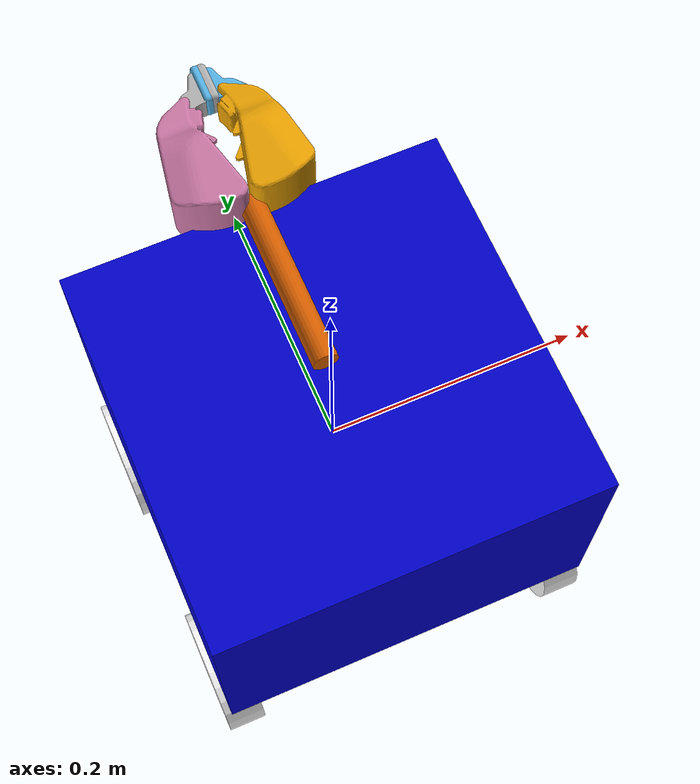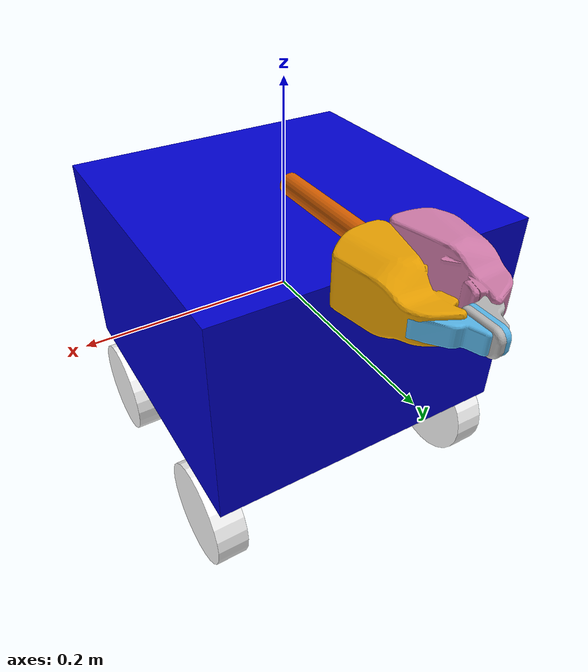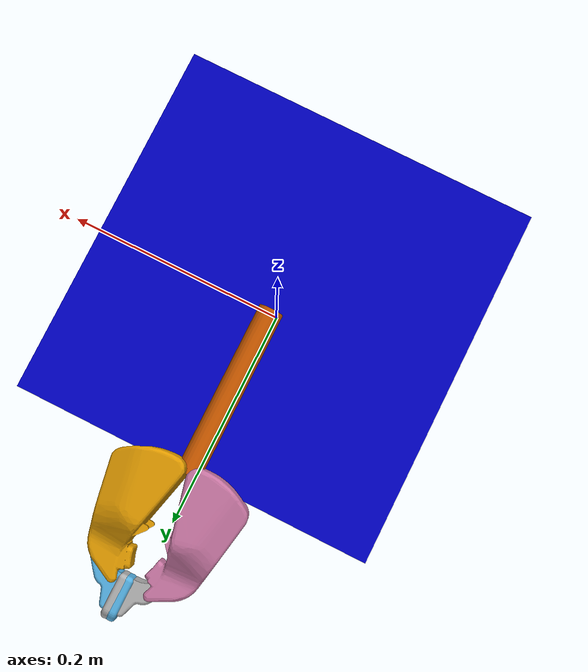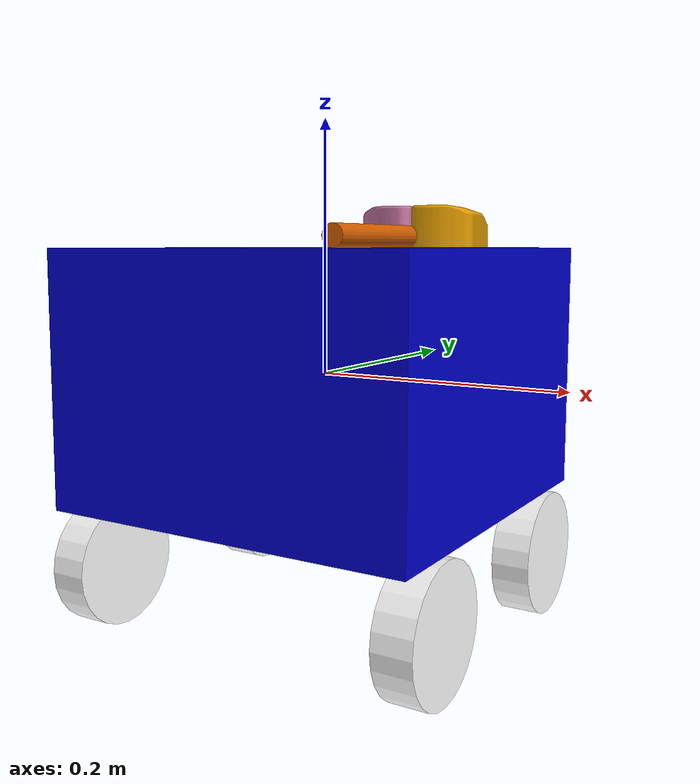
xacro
<?xml version="1.0"?>
<robot xmlns:xacro="http://www.ros.org/wiki/xacro" name="umic_gripper">

 <xacro:property name="width" value="0.30"/>
 <xacro:property name="length" value="0.30"/>
 <xacro:property name="heigth" value="0.20"/>

 <!--materials-->
 <material name="white">
  <color rgba="1.0 1.0 1.0 1.0"/>
 </material>
 <material name="blue">
  <color rgba="0.0 0.0 0.8 1.0"/>
 </material>

 <!--default inertial-->
 <xacro:macro name="default_inertial" params="mass">
   <inertial>
     <mass value="${mass}" />
     <inertia ixx="1.0" ixy="0.0" ixz="0.0" iyy="1.0" iyz="0.0" izz="1.0" />
   </inertial>
 </xacro:macro>

 <link name="base_link">

	<visual>
   <geometry>
    <box size="${width} ${length} ${heigth}"/>
   </geometry>
   <material name="blue"/>
  </visual>

	<xacro:default_inertial mass="10"/>

	<collision>
	 <origin xyz="0 0 0"/>
	 <geometry>
    <box size="${width} ${length} ${heigth}"/>
   </geometry>
	</collision>

 </link>

 <xacro:property name="wheel_width" value="0.03"/>
 <xacro:property name="wheel_radius" value="0.05"/>
 <xacro:macro name="wheel" params="prefix1 prefix2 reflect1 reflect2">

	<link name="${prefix1}_${prefix2}_wheel">

	 <visual>
    <geometry>
     <cylinder length="${wheel_width}" radius="${wheel_radius}"/>
    </geometry>
    <origin rpy="0 1.57075 0"/>
    <material name="white"/>
   </visual>

   <xacro:default_inertial mass="1"/>

	 <collision>
		<origin xyz="0 0 0" rpy="0 1.5707 0"/>
		<geometry>
		 <cylinder radius="${wheel_radius}" length="${wheel_width}"/>
		</geometry>
	 </collision>

	</link>

  <joint name="base_to_${prefix1}_${prefix2}_wheel" type="continuous">
   <parent link="base_link"/>
   <child link="${prefix1}_${prefix2}_wheel"/>
   <axis xyz="1 0 0"/>
   <origin xyz="${reflect2*(width/2-0.01)} ${reflect1*(length/2-wheel_radius)} -${heigth/2+wheel_radius}" />
  </joint>
 </xacro:macro>

 <xacro:wheel prefix1="front" prefix2="right" reflect1="1" reflect2="1" />
 <xacro:wheel prefix1="front" prefix2="left" reflect1="1" reflect2="-1" />
 <xacro:wheel prefix1="rear" prefix2="right" reflect1="-1" reflect2="1" />
 <xacro:wheel prefix1="rear" prefix2="left" reflect1="-1" reflect2="-1" />

 <link name="gripper_pole">

	<visual>
   <geometry>
    <cylinder length="0.14" radius="0.01"/>
   </geometry>
   <origin rpy="1.57075 0 0" xyz="0 0.07 0"/>
  </visual>

	<xacro:default_inertial mass="0.05"/>

	<collision>
	 <geometry>
		<cylinder length="0.14" radius="0.01"/>
	 </geometry>
	 <origin xyz="0 0.07 0" rpy="1.57075 0 0"/>
	</collision>

 </link>

 <joint name="gripper_extension" type="prismatic">
  <parent link="base_link"/>
  <child link="gripper_pole"/>
  <limit effort="1000" lower="0" upper="0.10" velocity="0.5"/>
  <origin xyz="0 0.01 ${heigth/2+0.01}" rpy="0 0 0"/>
 </joint>

 <link name="left_gripper">

  <visual>
   <origin rpy="0 0 1.57075"/>
   <geometry>
    <mesh filename="package://urdf_tutorial/meshes/l_finger.dae"/>
   </geometry>
  </visual>

	<xacro:default_inertial mass="0.05"/>

  <collision>
   <origin rpy="0 0 1.57075"/>
   <geometry>
    <mesh filename="package://urdf_tutorial/meshes/l_finger.dae"/>
   </geometry>
  </collision>

 </link>

 <joint name="left_gripper_joint" type="revolute">
  <axis xyz="0 0 1"/>
  <limit effort="1000.0" lower="0.0" upper="0.548" velocity="0.5"/>
  <origin xyz="-0.01 0.14 0"/>
  <parent link="gripper_pole"/>
  <child link="left_gripper"/>
 </joint>

 <link name="left_tip">

  <visual>
   <origin xyz="0 0 0" rpy="0 0 1.57075"/>
   <geometry>
    <mesh filename="package://urdf_tutorial/meshes/l_finger_tip.dae"/>
   </geometry>
  </visual>

	<xacro:default_inertial mass="0.05"/>

  <collision>
   <origin xyz="0 0 0" rpy="0 0 1.57075"/>
   <geometry>
    <mesh filename="package://urdf_tutorial/meshes/l_finger_tip.dae"/>
   </geometry>
  </collision>

 </link>

 <joint name="left_tip_joint" type="fixed">
  <parent link="left_gripper"/>
  <child link="left_tip"/>
  <origin xyz="0.005 0.09 0"/>
 </joint>

 <link name="right_gripper">

  <visual>
   <origin rpy="-3.1415 0 1.57075"/>
   <geometry>
    <mesh filename="package://urdf_tutorial/meshes/l_finger.dae"/>
   </geometry>
  </visual>

	<xacro:default_inertial mass="0.05"/>

  <collision>
   <origin rpy="-3.1415 0 1.57075"/>
   <geometry>
    <mesh filename="package://urdf_tutorial/meshes/l_finger.dae"/>
   </geometry>
  </collision>

 </link>

 <joint name="right_gripper_joint" type="revolute">
  <axis xyz="0 0 -1"/>
  <limit effort="1000.0" lower="0.0" upper="0.548" velocity="0.5"/>
  <origin rpy="0 0 0" xyz="0.01 0.14 0"/>
  <parent link="gripper_pole"/>
  <child link="right_gripper"/>
 </joint>

 <link name="right_tip">

  <visual>
   <origin rpy="-3.1415 0 1.57075" xyz="0 0 0"/>
   <geometry>
    <mesh filename="package://urdf_tutorial/meshes/l_finger_tip.dae"/>
   </geometry>
  </visual>

	<xacro:default_inertial mass="0.05"/>

  <collision>
   <origin rpy="-3.1415 0 1.57075" xyz="0 0 0"/>
   <geometry>
    <mesh filename="package://urdf_tutorial/meshes/l_finger_tip.dae"/>
   </geometry>
  </collision>

 </link>

 <joint name="right_tip_joint" type="fixed">
  <parent link="right_gripper"/>
  <child link="right_tip"/>
  <origin xyz="0.005 0.09 0"/>
 </joint>

 <!--Gazebo Plugin -->
 <gazebo>
	<plugin name="gazebo_ros_control" filename="libgazebo_ros_control.so">
	 <robotNamespace>/</robotNamespace>
	</plugin>
 </gazebo>

</robot>
